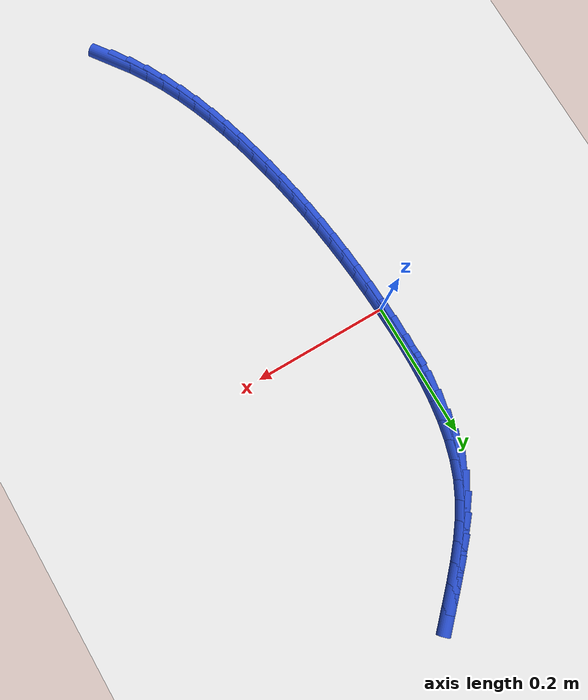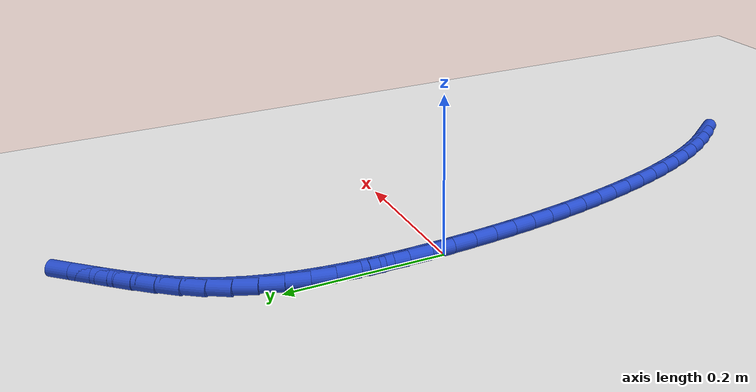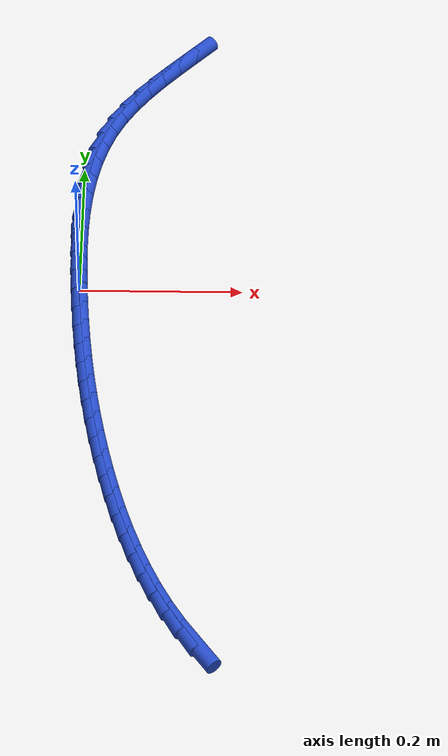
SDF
<sdf version="1.6">
 <world name="default">
  <model name="ground_plane">
   <static>1</static>
   <link name="link">
    <collision name="collision">
     <geometry><plane><normal>0 0 1</normal><size>100 100</size></plane></geometry>
     <surface><friction><ode><mu>100</mu><mu2>50</mu2></ode></friction></surface>
    </collision>
    <visual name="visual">
     <cast_shadows>0</cast_shadows>
     <geometry><plane><normal>0 0 1</normal><size>100 100</size></plane></geometry>
     <material>
      <script><uri>file://media/materials/scripts/gazebo.material</uri><name>Gazebo/WhiteGlow</name></script>
     </material>
    </visual>
   </link>
  </model>
  <model name="line">
   <link name="link_0">
    <pose>-9.215718466126788e-18 -1.0408340855860843e-16 0.01 0 1.57 -1.529621618032261</pose>
    <collision name="collision">
     <geometry><cylinder><radius>0.01</radius><length>0.08</length></cylinder></geometry>
    </collision>
    <visual name="visual">
     <material>
      <script><name>Gazebo/Blue</name><uri>file://media/materials/scripts/gazebo.material</uri></script>
     </material>
     <geometry><cylinder><radius>0.01</radius><length>0.08</length></cylinder></geometry>
    </visual>
   </link>
   <link name="link_1">
    <pose>-0.0012172197145369874 0.02954560698774858 0.01 0 1.57 -1.5515604070414126</pose>
    <collision name="collision">
     <geometry><cylinder><radius>0.01</radius><length>0.08</length></cylinder></geometry>
    </collision>
    <visual name="visual">
     <material>
      <script><name>Gazebo/Blue</name><uri>file://media/materials/scripts/gazebo.material</uri></script>
     </material>
     <geometry><cylinder><radius>0.01</radius><length>0.08</length></cylinder></geometry>
    </visual>
   </link>
   <link name="link_2">
    <pose>-0.001789152059698116 0.05927445845407069 0.01 0 1.57 1.560852074819646</pose>
    <collision name="collision">
     <geometry><cylinder><radius>0.01</radius><length>0.08</length></cylinder></geometry>
    </collision>
    <visual name="visual">
     <material>
      <script><name>Gazebo/Blue</name><uri>file://media/materials/scripts/gazebo.material</uri></script>
     </material>
     <geometry><cylinder><radius>0.01</radius><length>0.08</length></cylinder></geometry>
    </visual>
   </link>
   <link name="link_3">
    <pose>-0.0014935204263659032 0.0890023745589933 0.01 0 1.57 1.523933544363301</pose>
    <collision name="collision">
     <geometry><cylinder><radius>0.01</radius><length>0.08</length></cylinder></geometry>
    </collision>
    <visual name="visual">
     <material>
      <script><name>Gazebo/Blue</name><uri>file://media/materials/scripts/gazebo.material</uri></script>
     </material>
     <geometry><cylinder><radius>0.01</radius><length>0.08</length></cylinder></geometry>
    </visual>
   </link>
   <link name="link_4">
    <pose>-0.00010804820542285746 0.11854517546254352 0.01 0 1.57 1.4785914215890161</pose>
    <collision name="collision">
     <geometry><cylinder><radius>0.01</radius><length>0.08</length></cylinder></geometry>
    </collision>
    <visual name="visual">
     <material>
      <script><name>Gazebo/Blue</name><uri>file://media/materials/scripts/gazebo.material</uri></script>
     </material>
     <geometry><cylinder><radius>0.01</radius><length>0.08</length></cylinder></geometry>
    </visual>
   </link>
   <link name="link_5">
    <pose>0.0025895412122485177 0.1477186813247484 0.01 0 1.57 1.4239922343526181</pose>
    <collision name="collision">
     <geometry><cylinder><radius>0.01</radius><length>0.08</length></cylinder></geometry>
    </collision>
    <visual name="visual">
     <material>
      <script><name>Gazebo/Blue</name><uri>file://media/materials/scripts/gazebo.material</uri></script>
     </material>
     <geometry><cylinder><radius>0.01</radius><length>0.08</length></cylinder></geometry>
    </visual>
   </link>
   <link name="link_6">
    <pose>0.00682152443576572 0.17633871230563505 0.01 0 1.57 1.3592278208842818</pose>
    <collision name="collision">
     <geometry><cylinder><radius>0.01</radius><length>0.08</length></cylinder></geometry>
    </collision>
    <visual name="visual">
     <material>
      <script><name>Gazebo/Blue</name><uri>file://media/materials/scripts/gazebo.material</uri></script>
     </material>
     <geometry><cylinder><radius>0.01</radius><length>0.08</length></cylinder></geometry>
    </visual>
   </link>
   <link name="link_7">
    <pose>0.012810178074246236 0.20422108856523047 0.01 0 1.57 1.2834471232154372</pose>
    <collision name="collision">
     <geometry><cylinder><radius>0.01</radius><length>0.08</length></cylinder></geometry>
    </collision>
    <visual name="visual">
     <material>
      <script><name>Gazebo/Blue</name><uri>file://media/materials/scripts/gazebo.material</uri></script>
     </material>
     <geometry><cylinder><radius>0.01</radius><length>0.08</length></cylinder></geometry>
    </visual>
   </link>
   <link name="link_8">
    <pose>0.020777778736807556 0.23118163026356178 0.01 0 1.57 1.196071126284071</pose>
    <collision name="collision">
     <geometry><cylinder><radius>0.01</radius><length>0.08</length></cylinder></geometry>
    </collision>
    <visual name="visual">
     <material>
      <script><name>Gazebo/Blue</name><uri>file://media/materials/scripts/gazebo.material</uri></script>
     </material>
     <geometry><cylinder><radius>0.01</radius><length>0.08</length></cylinder></geometry>
    </visual>
   </link>
   <link name="link_9">
    <pose>0.0309466030325672 0.2570361575606562 0.01 0 1.57 1.0976404079004878</pose>
    <collision name="collision">
     <geometry><cylinder><radius>0.01</radius><length>0.08</length></cylinder></geometry>
    </collision>
    <visual name="visual">
     <material>
      <script><name>Gazebo/Blue</name><uri>file://media/materials/scripts/gazebo.material</uri></script>
     </material>
     <geometry><cylinder><radius>0.01</radius><length>0.08</length></cylinder></geometry>
    </visual>
   </link>
   <link name="link_10">
    <pose>0.04352651727885882 0.28160906107920164 0.01 0 1.57 1.0023911948197595</pose>
    <collision name="collision">
     <geometry><cylinder><radius>0.01</radius><length>0.08</length></cylinder></geometry>
    </collision>
    <visual name="visual">
     <material>
      <script><name>Gazebo/Blue</name><uri>file://media/materials/scripts/gazebo.material</uri></script>
     </material>
     <geometry><cylinder><radius>0.01</radius><length>0.08</length></cylinder></geometry>
    </visual>
   </link>
   <link name="link_11">
    <pose>0.058424554177370344 0.3049338662664882 0.01 0 1.57 0.9254155220851544</pose>
    <collision name="collision">
     <geometry><cylinder><radius>0.01</radius><length>0.08</length></cylinder></geometry>
    </collision>
    <visual name="visual">
     <material>
      <script><name>Gazebo/Blue</name><uri>file://media/materials/scripts/gazebo.material</uri></script>
     </material>
     <geometry><cylinder><radius>0.01</radius><length>0.08</length></cylinder></geometry>
    </visual>
   </link>
   <link name="link_12">
    <pose>0.07523492046412182 0.32726013404301757 0.01 0 1.57 0.8675585224315688</pose>
    <collision name="collision">
     <geometry><cylinder><radius>0.01</radius><length>0.08</length></cylinder></geometry>
    </collision>
    <visual name="visual">
     <material>
      <script><name>Gazebo/Blue</name><uri>file://media/materials/scripts/gazebo.material</uri></script>
     </material>
     <geometry><cylinder><radius>0.01</radius><length>0.08</length></cylinder></geometry>
    </visual>
   </link>
   <link name="link_13">
    <pose>0.09353741345308561 0.348847376377646 0.01 0 1.57 0.8281887263366093</pose>
    <collision name="collision">
     <geometry><cylinder><radius>0.01</radius><length>0.08</length></cylinder></geometry>
    </collision>
    <visual name="visual">
     <material>
      <script><name>Gazebo/Blue</name><uri>file://media/materials/scripts/gazebo.material</uri></script>
     </material>
     <geometry><cylinder><radius>0.01</radius><length>0.08</length></cylinder></geometry>
    </visual>
   </link>
   <link name="link_14">
    <pose>0.11291183045823405 0.36995510523922986 0.01 0 1.57 0.8064536583959431</pose>
    <collision name="collision">
     <geometry><cylinder><radius>0.01</radius><length>0.08</length></cylinder></geometry>
    </collision>
    <visual name="visual">
     <material>
      <script><name>Gazebo/Blue</name><uri>file://media/materials/scripts/gazebo.material</uri></script>
     </material>
     <geometry><cylinder><radius>0.01</radius><length>0.08</length></cylinder></geometry>
    </visual>
   </link>
   <link name="link_15">
    <pose>0.13293796879353936 0.3908428325966253 0.01 0 1.57 0.8016546540516383</pose>
    <collision name="collision">
     <geometry><cylinder><radius>0.01</radius><length>0.08</length></cylinder></geometry>
    </collision>
    <visual name="visual">
     <material>
      <script><name>Gazebo/Blue</name><uri>file://media/materials/scripts/gazebo.material</uri></script>
     </material>
     <geometry><cylinder><radius>0.01</radius><length>0.08</length></cylinder></geometry>
    </visual>
   </link>
   <link name="link_211">
    <pose>0.14514702000858912 -0.519029243989665 0.01 0 1.57 -0.9430397953535955</pose>
    <collision name="collision">
     <geometry><cylinder><radius>0.01</radius><length>0.08</length></cylinder></geometry>
    </collision>
    <visual name="visual">
     <material>
      <script><name>Gazebo/Blue</name><uri>file://media/materials/scripts/gazebo.material</uri></script>
     </material>
     <geometry><cylinder><radius>0.01</radius><length>0.08</length></cylinder></geometry>
    </visual>
   </link>
   <link name="link_212">
    <pose>0.1285081799661029 -0.4961007585872249 0.01 0 1.57 -1.0084991367483607</pose>
    <collision name="collision">
     <geometry><cylinder><radius>0.01</radius><length>0.08</length></cylinder></geometry>
    </collision>
    <visual name="visual">
     <material>
      <script><name>Gazebo/Blue</name><uri>file://media/materials/scripts/gazebo.material</uri></script>
     </material>
     <geometry><cylinder><radius>0.01</radius><length>0.08</length></cylinder></geometry>
    </visual>
   </link>
   <link name="link_213">
    <pose>0.11333461592481085 -0.47202163350493326 0.01 0 1.57 -1.0678449097398448</pose>
    <collision name="collision">
     <geometry><cylinder><radius>0.01</radius><length>0.08</length></cylinder></geometry>
    </collision>
    <visual name="visual">
     <material>
      <script><name>Gazebo/Blue</name><uri>file://media/materials/scripts/gazebo.material</uri></script>
     </material>
     <geometry><cylinder><radius>0.01</radius><length>0.08</length></cylinder></geometry>
    </visual>
   </link>
   <link name="link_214">
    <pose>0.09953478800251922 -0.4469374655279464 0.01 0 1.57 -1.1212515432054504</pose>
    <collision name="collision">
     <geometry><cylinder><radius>0.01</radius><length>0.08</length></cylinder></geometry>
    </collision>
    <visual name="visual">
     <material>
      <script><name>Gazebo/Blue</name><uri>file://media/materials/scripts/gazebo.material</uri></script>
     </material>
     <geometry><cylinder><radius>0.01</radius><length>0.08</length></cylinder></geometry>
    </visual>
   </link>
   <link name="link_215">
    <pose>0.08701715631703409 -0.4209938514414205 0.01 0 1.57 -1.1690034203061637</pose>
    <collision name="collision">
     <geometry><cylinder><radius>0.01</radius><length>0.08</length></cylinder></geometry>
    </collision>
    <visual name="visual">
     <material>
      <script><name>Gazebo/Blue</name><uri>file://media/materials/scripts/gazebo.material</uri></script>
     </material>
     <geometry><cylinder><radius>0.01</radius><length>0.08</length></cylinder></geometry>
    </visual>
   </link>
   <link name="link_216">
    <pose>0.07569018098616245 -0.394336388030513 0.01 0 1.57 -1.2114392208183826</pose>
    <collision name="collision">
     <geometry><cylinder><radius>0.01</radius><length>0.08</length></cylinder></geometry>
    </collision>
    <visual name="visual">
     <material>
      <script><name>Gazebo/Blue</name><uri>file://media/materials/scripts/gazebo.material</uri></script>
     </material>
     <geometry><cylinder><radius>0.01</radius><length>0.08</length></cylinder></geometry>
    </visual>
   </link>
   <link name="link_217">
    <pose>0.06546232212771032 -0.36711067208038023 0.01 0 1.57 -1.2489104168227847</pose>
    <collision name="collision">
     <geometry><cylinder><radius>0.01</radius><length>0.08</length></cylinder></geometry>
    </collision>
    <visual name="visual">
     <material>
      <script><name>Gazebo/Blue</name><uri>file://media/materials/scripts/gazebo.material</uri></script>
     </material>
     <geometry><cylinder><radius>0.01</radius><length>0.08</length></cylinder></geometry>
    </visual>
   </link>
   <link name="link_218">
    <pose>0.056242039859484026 -0.3394623003761784 0.01 0 1.57 -1.2817521375268675</pose>
    <collision name="collision">
     <geometry><cylinder><radius>0.01</radius><length>0.08</length></cylinder></geometry>
    </collision>
    <visual name="visual">
     <material>
      <script><name>Gazebo/Blue</name><uri>file://media/materials/scripts/gazebo.material</uri></script>
     </material>
     <geometry><cylinder><radius>0.01</radius><length>0.08</length></cylinder></geometry>
    </visual>
   </link>
   <link name="link_219">
    <pose>0.04793779429928976 -0.3115368697030636 0.01 0 1.57 -1.3102634610720985</pose>
    <collision name="collision">
     <geometry><cylinder><radius>0.01</radius><length>0.08</length></cylinder></geometry>
    </collision>
    <visual name="visual">
     <material>
      <script><name>Gazebo/Blue</name><uri>file://media/materials/scripts/gazebo.material</uri></script>
     </material>
     <geometry><cylinder><radius>0.01</radius><length>0.08</length></cylinder></geometry>
    </visual>
   </link>
   <link name="link_220">
    <pose>0.040458045564934236 -0.2834799768461936 0.01 0 1.57 -1.3347773170952617</pose>
    <collision name="collision">
     <geometry><cylinder><radius>0.01</radius><length>0.08</length></cylinder></geometry>
    </collision>
    <visual name="visual">
     <material>
      <script><name>Gazebo/Blue</name><uri>file://media/materials/scripts/gazebo.material</uri></script>
     </material>
     <geometry><cylinder><radius>0.01</radius><length>0.08</length></cylinder></geometry>
    </visual>
   </link>
   <link name="link_221">
    <pose>0.033712681272191417 -0.25543288618623045 0.01 0 1.57 -1.3572371312151545</pose>
    <collision name="collision">
     <geometry><cylinder><radius>0.01</radius><length>0.08</length></cylinder></geometry>
    </collision>
    <visual name="visual">
     <material>
      <script><name>Gazebo/Blue</name><uri>file://media/materials/scripts/gazebo.material</uri></script>
     </material>
     <geometry><cylinder><radius>0.01</radius><length>0.08</length></cylinder></geometry>
    </visual>
   </link>
   <link name="link_222">
    <pose>0.027642579761430756 -0.2274428063800911 0.01 0 1.57 -1.3792992776802544</pose>
    <collision name="collision">
     <geometry><cylinder><radius>0.01</radius><length>0.08</length></cylinder></geometry>
    </collision>
    <visual name="visual">
     <material>
      <script><name>Gazebo/Blue</name><uri>file://media/materials/scripts/gazebo.material</uri></script>
     </material>
     <geometry><cylinder><radius>0.01</radius><length>0.08</length></cylinder></geometry>
    </visual>
   </link>
   <link name="link_223">
    <pose>0.022218620185648078 -0.19946589470782405 0.01 0 1.57 -1.4008873485284683</pose>
    <collision name="collision">
     <geometry><cylinder><radius>0.01</radius><length>0.08</length></cylinder></geometry>
    </collision>
    <visual name="visual">
     <material>
      <script><name>Gazebo/Blue</name><uri>file://media/materials/scripts/gazebo.material</uri></script>
     </material>
     <geometry><cylinder><radius>0.01</radius><length>0.08</length></cylinder></geometry>
    </visual>
   </link>
   <link name="link_224">
    <pose>0.017412911148003685 -0.17145457711287831 0.01 0 1.57 -1.421859199658573</pose>
    <collision name="collision">
     <geometry><cylinder><radius>0.01</radius><length>0.08</length></cylinder></geometry>
    </collision>
    <visual name="visual">
     <material>
      <script><name>Gazebo/Blue</name><uri>file://media/materials/scripts/gazebo.material</uri></script>
     </material>
     <geometry><cylinder><radius>0.01</radius><length>0.08</length></cylinder></geometry>
    </visual>
   </link>
   <link name="link_225">
    <pose>0.013197561251657471 -0.14336127953870073 0.01 0 1.57 -1.442081944015459</pose>
    <collision name="collision">
     <geometry><cylinder><radius>0.01</radius><length>0.08</length></cylinder></geometry>
    </collision>
    <visual name="visual">
     <material>
      <script><name>Gazebo/Blue</name><uri>file://media/materials/scripts/gazebo.material</uri></script>
     </material>
     <geometry><cylinder><radius>0.01</radius><length>0.08</length></cylinder></geometry>
    </visual>
   </link>
   <link name="link_226">
    <pose>0.009544679099769457 -0.1151384279287389 0.01 0 1.57 -1.4614348296012805</pose>
    <collision name="collision">
     <geometry><cylinder><radius>0.01</radius><length>0.08</length></cylinder></geometry>
    </collision>
    <visual name="visual">
     <material>
      <script><name>Gazebo/Blue</name><uri>file://media/materials/scripts/gazebo.material</uri></script>
     </material>
     <geometry><cylinder><radius>0.01</radius><length>0.08</length></cylinder></geometry>
    </visual>
   </link>
   <link name="link_227">
    <pose>0.006426373295499674 -0.0867384482264404 0.01 0 1.57 -1.4798115482008876</pose>
    <collision name="collision">
     <geometry><cylinder><radius>0.01</radius><length>0.08</length></cylinder></geometry>
    </collision>
    <visual name="visual">
     <material>
      <script><name>Gazebo/Blue</name><uri>file://media/materials/scripts/gazebo.material</uri></script>
     </material>
     <geometry><cylinder><radius>0.01</radius><length>0.08</length></cylinder></geometry>
    </visual>
   </link>
   <link name="link_228">
    <pose>0.003814752442008095 -0.058113766375252104 0.01 0 1.57 -1.4971218951033296</pose>
    <collision name="collision">
     <geometry><cylinder><radius>0.01</radius><length>0.08</length></cylinder></geometry>
    </collision>
    <visual name="visual">
     <material>
      <script><name>Gazebo/Blue</name><uri>file://media/materials/scripts/gazebo.material</uri></script>
     </material>
     <geometry><cylinder><radius>0.01</radius><length>0.08</length></cylinder></geometry>
    </visual>
   </link>
   <link name="link_229">
    <pose>0.0016819251424548772 -0.02921680831862298 0.01 0 1.57 -1.5132927533974045</pose>
    <collision name="collision">
     <geometry><cylinder><radius>0.01</radius><length>0.08</length></cylinder></geometry>
    </collision>
    <visual name="visual">
     <material>
      <script><name>Gazebo/Blue</name><uri>file://media/materials/scripts/gazebo.material</uri></script>
     </material>
     <geometry><cylinder><radius>0.01</radius><length>0.08</length></cylinder></geometry>
    </visual>
   </link>
   <link name="link_230">
    <pose>-2.076247160309741e-17 9.020562075079397e-17 0.01 0 1.57 -1.5282684255581576</pose>
    <collision name="collision">
     <geometry><cylinder><radius>0.01</radius><length>0.08</length></cylinder></geometry>
    </collision>
    <visual name="visual">
     <material>
      <script><name>Gazebo/Blue</name><uri>file://media/materials/scripts/gazebo.material</uri></script>
     </material>
     <geometry><cylinder><radius>0.01</radius><length>0.08</length></cylinder></geometry>
    </visual>
   </link>
   <link name="link_231">
    <pose>-0.0012589143821965666 0.0295842326371695 0.01 0 1.57 -1.5420103750440497</pose>
    <collision name="collision">
     <geometry><cylinder><radius>0.01</radius><length>0.08</length></cylinder></geometry>
    </collision>
    <visual name="visual">
     <material>
      <script><name>Gazebo/Blue</name><uri>file://media/materials/scripts/gazebo.material</uri></script>
     </material>
     <geometry><cylinder><radius>0.01</radius><length>0.08</length></cylinder></geometry>
    </visual>
   </link>
   <link name="link_232">
    <pose>-0.0021227094009747343 0.05958346364943769 0.01 0 1.57 -1.535185573279523</pose>
    <collision name="collision">
     <geometry><cylinder><radius>0.01</radius><length>0.08</length></cylinder></geometry>
    </collision>
    <visual name="visual">
     <material>
      <script><name>Gazebo/Blue</name><uri>file://media/materials/scripts/gazebo.material</uri></script>
     </material>
     <geometry><cylinder><radius>0.01</radius><length>0.08</length></cylinder></geometry>
    </visual>
   </link>
  </model>
 </world>
</sdf>
